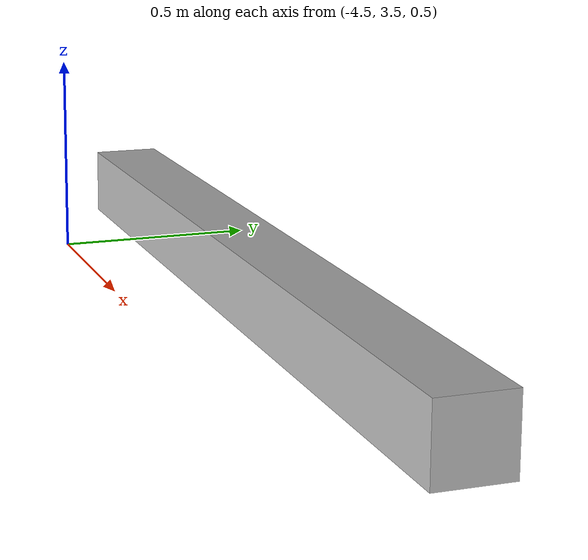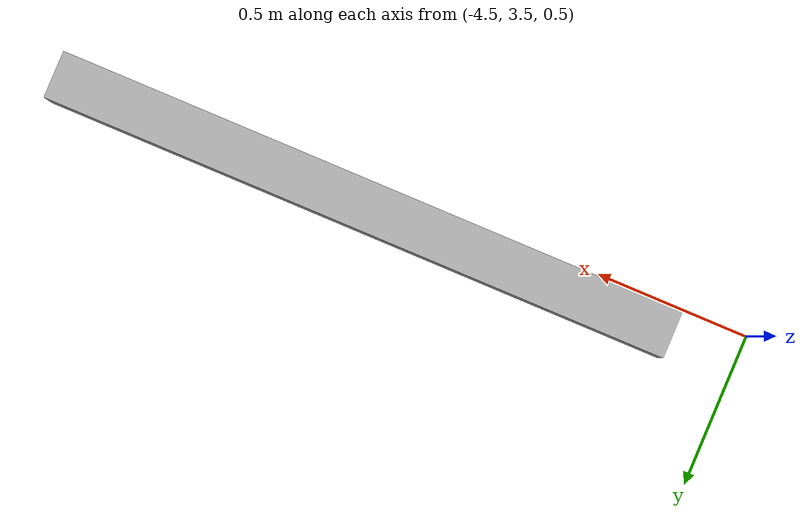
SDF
<sdf version="1.7">
 <world name="default">
  <model name="orthogonal_747_2.000.15_TS">
   <static>1</static>
   <link name="x_link_1_4_1">
    <inertial>
     <mass>1</mass>
     <inertia>
      <ixx>0.166667</ixx>
      <ixy>0</ixy>
      <ixz>0</ixz>
      <iyy>0.166667</iyy>
      <iyz>0</iyz>
      <izz>0.166667</izz>
     </inertia>
    </inertial>
    <pose>3.225 8.6 3.225 0 -0 0</pose>
    <visual name="visual_0">
     <laser_retro>1513</laser_retro>
     <geometry><box><size>2 1e-06 0.15</size></box></geometry>
     <material>
      <script><name>Gazebo/Grey</name><uri>file://media/materials/scripts/gazebo.material</uri></script>
      <shader type="pixel"><normal_map>__default__</normal_map></shader>
      <ambient>0.678 0.498 0.659 1</ambient>
      <diffuse>0.7 0.7 0.7 1</diffuse>
      <specular>0.01 0.01 0.01 1</specular>
      <emissive>0 0 0 1</emissive>
     </material>
     <pose>0 -0.075 0 0 -0 0</pose>
     <transparency>1</transparency>
    </visual>
    <visual name="visual_1">
     <laser_retro>1514</laser_retro>
     <geometry><box><size>2 1e-06 0.15</size></box></geometry>
     <material>
      <script><name>Gazebo/Grey</name><uri>file://media/materials/scripts/gazebo.material</uri></script>
      <shader type="pixel"><normal_map>__default__</normal_map></shader>
      <ambient>0.447 0.624 0.812 1</ambient>
      <diffuse>0.7 0.7 0.7 1</diffuse>
      <specular>0.01 0.01 0.01 1</specular>
      <emissive>0 0 0 1</emissive>
     </material>
     <pose>0 0.075 0 0 -0 0</pose>
     <transparency>1</transparency>
    </visual>
    <visual name="visual_2">
     <laser_retro>1515</laser_retro>
     <geometry><box><size>2 0.15 1e-06</size></box></geometry>
     <material>
      <script><name>Gazebo/Grey</name><uri>file://media/materials/scripts/gazebo.material</uri></script>
      <shader type="pixel"><normal_map>__default__</normal_map></shader>
      <ambient>0.988 0.686 0.243 1</ambient>
      <diffuse>0.7 0.7 0.7 1</diffuse>
      <specular>0.01 0.01 0.01 1</specular>
      <emissive>0 0 0 1</emissive>
     </material>
     <pose>0 0 -0.075 0 -0 0</pose>
     <transparency>1</transparency>
    </visual>
    <visual name="visual_3">
     <laser_retro>1516</laser_retro>
     <geometry><box><size>1e-06 0.15 0.15</size></box></geometry>
     <material>
      <script><name>Gazebo/Grey</name><uri>file://media/materials/scripts/gazebo.material</uri></script>
      <shader type="pixel"><normal_map>__default__</normal_map></shader>
      <ambient>0.988 0.914 0.31 1</ambient>
      <diffuse>0.7 0.7 0.7 1</diffuse>
      <specular>0.01 0.01 0.01 1</specular>
      <emissive>0 0 0 1</emissive>
     </material>
     <pose>1 0 0 0 -0 0</pose>
     <transparency>1</transparency>
    </visual>
    <visual name="visual_4">
     <laser_retro>1517</laser_retro>
     <geometry><box><size>2 0.15 1e-06</size></box></geometry>
     <material>
      <script><name>Gazebo/Grey</name><uri>file://media/materials/scripts/gazebo.material</uri></script>
      <shader type="pixel"><normal_map>__default__</normal_map></shader>
      <ambient>0.937 0.161 0.161 1</ambient>
      <diffuse>0.7 0.7 0.7 1</diffuse>
      <specular>0.01 0.01 0.01 1</specular>
      <emissive>0 0 0 1</emissive>
     </material>
     <pose>0 0 0.075 0 -0 0</pose>
     <transparency>1</transparency>
    </visual>
    <visual name="visual_5">
     <laser_retro>1518</laser_retro>
     <geometry><box><size>1e-06 0.15 0.15</size></box></geometry>
     <material>
      <script><name>Gazebo/Grey</name><uri>file://media/materials/scripts/gazebo.material</uri></script>
      <shader type="pixel"><normal_map>__default__</normal_map></shader>
      <ambient>0.541 0.886 0.204 1</ambient>
      <diffuse>0.7 0.7 0.7 1</diffuse>
      <specular>0.01 0.01 0.01 1</specular>
      <emissive>0 0 0 1</emissive>
     </material>
     <pose>-1 0 0 0 -0 0</pose>
     <transparency>1</transparency>
    </visual>
    <visual name="visual_texture">
     <geometry><box><size>1.9998 0.149985 0.149985</size></box></geometry>
     <material>
      <script>
       <uri>model://BASE_MODELS/simple_block_v2_textured/materials/scripts</uri>
       <uri>model://BASE_MODELS/simple_block_v2_textured/materials/textures</uri>
       <name>metal</name>
      </script>
     </material>
     <laser_retro>1519</laser_retro>
    </visual>
    <collision name="collision">
     <geometry><box><size>2 0.15 0.15</size></box></geometry>
     <surface>
      <friction>
       <ode><mu>1</mu><mu2>1</mu2><fdir1>0 0 0</fdir1><slip1>0</slip1><slip2>0</slip2></ode>
       <torsional>
        <coefficient>1</coefficient>
        <patch_radius>0</patch_radius>
        <surface_radius>0</surface_radius>
        <use_patch_radius>1</use_patch_radius>
        <ode><slip>0</slip></ode>
       </torsional>
      </friction>
      <bounce><restitution_coefficient>0</restitution_coefficient><threshold>1e+06</threshold></bounce>
      <contact>
       <collide_without_contact>0</collide_without_contact>
       <collide_without_contact_bitmask>1</collide_without_contact_bitmask>
       <collide_bitmask>1</collide_bitmask>
       <ode>
        <soft_cfm>0</soft_cfm>
        <soft_erp>0.2</soft_erp>
        <kp>1e+13</kp>
        <kd>1</kd>
        <max_vel>0.01</max_vel>
        <min_depth>0</min_depth>
       </ode>
       <bullet>
        <split_impulse>1</split_impulse>
        <split_impulse_penetration_threshold>-0.01</split_impulse_penetration_threshold>
        <soft_cfm>0</soft_cfm>
        <soft_erp>0.2</soft_erp>
        <kp>1e+13</kp>
        <kd>1</kd>
       </bullet>
      </contact>
     </surface>
    </collision>
   </link>
   <pose>-6.47624 -5 -2.5 0 -0 0</pose>
  </model>
 </world>
</sdf>
